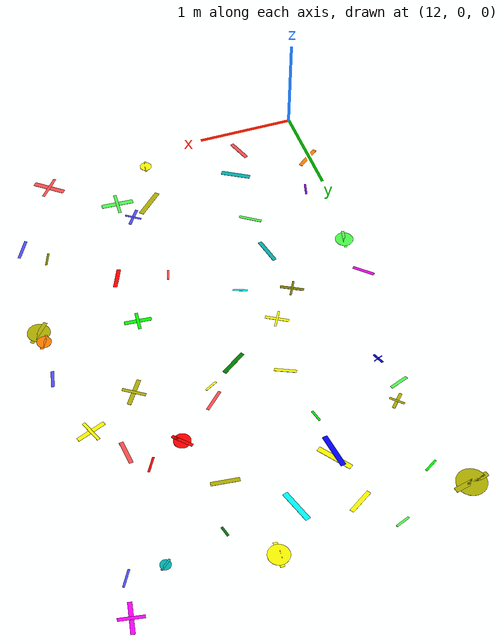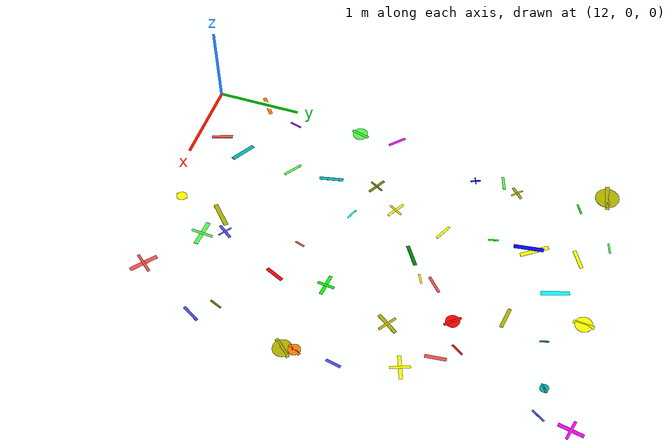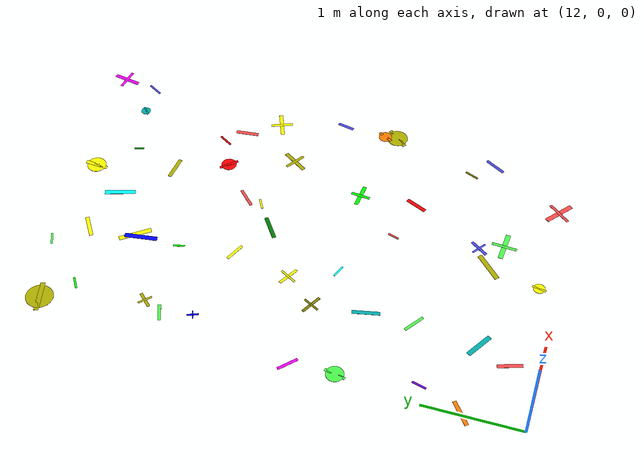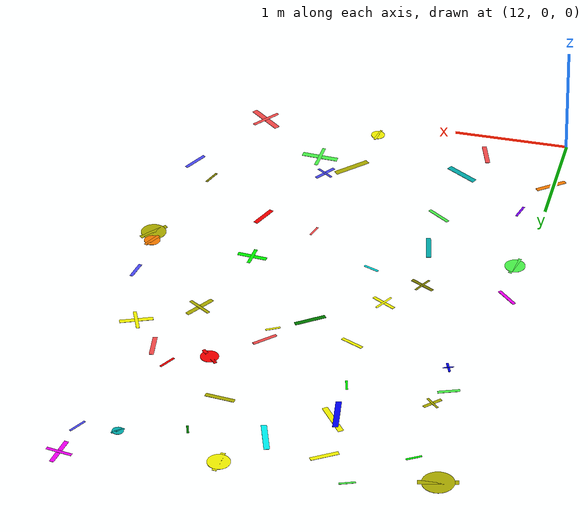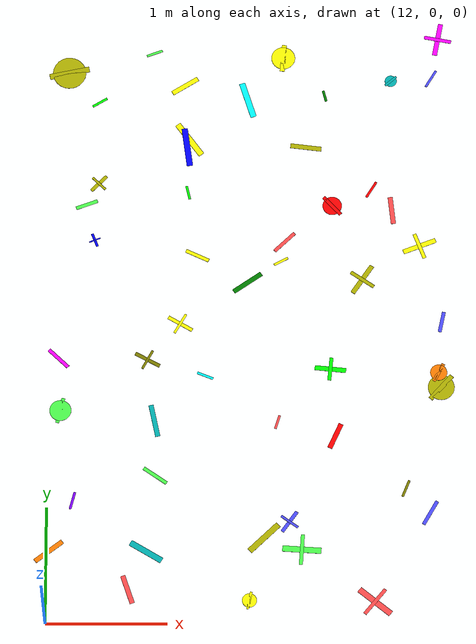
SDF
<sdf version="1.6">
 <world name="default">
  <model name="letter_S_2045">
   <static>true</static>
   <pose>12.02 0.62 0.007 0 0 3.793</pose>
   <link name="link">
    <visual name="visual">
     <geometry><box><size>0.28 0.04 0.002</size></box></geometry>
     <material>
      <ambient>1.0 0.5 0.0 1</ambient>
      <diffuse>1.0 0.5 0.0 1</diffuse>
      <specular>0.1 0.1 0.1 1</specular>
     </material>
    </visual>
   </link>
  </model>
  <model name="letter_U_2046">
   <static>true</static>
   <pose>12.21 1.06 0.009 0 0 4.455</pose>
   <link name="link">
    <visual name="visual">
     <geometry><box><size>0.15 0.02 0.002</size></box></geometry>
     <material>
      <ambient>0.5 0.0 1.0 1</ambient>
      <diffuse>0.5 0.0 1.0 1</diffuse>
      <specular>0.1 0.1 0.1 1</specular>
     </material>
    </visual>
   </link>
  </model>
  <model name="letter_G_2047">
   <static>true</static>
   <pose>12.10 1.85 0.008 0 0 4.489</pose>
   <link name="link">
    <visual name="visual">
     <geometry><box><size>0.22 0.03 0.002</size></box></geometry>
     <material>
      <ambient>0.3 1.0 0.3 1</ambient>
      <diffuse>0.3 1.0 0.3 1</diffuse>
      <specular>0.1 0.1 0.1 1</specular>
     </material>
    </visual>
    <visual name="visual2">
     <geometry><cylinder><radius>0.09</radius><length>0.002</length></cylinder></geometry>
     <material><ambient>0.3 1.0 0.3 1</ambient><diffuse>0.3 1.0 0.3 1</diffuse></material>
    </visual>
   </link>
  </model>
  <model name="letter_V_2048">
   <static>true</static>
   <pose>12.08 2.31 0.008 0 0 5.524</pose>
   <link name="link">
    <visual name="visual">
     <geometry><box><size>0.22 0.03 0.002</size></box></geometry>
     <material>
      <ambient>1.0 0.0 1.0 1</ambient>
      <diffuse>1.0 0.0 1.0 1</diffuse>
      <specular>0.1 0.1 0.1 1</specular>
     </material>
    </visual>
   </link>
  </model>
  <model name="letter_H_2051">
   <static>true</static>
   <pose>12.37 3.37 0.003 0 0 1.952</pose>
   <link name="link">
    <visual name="visual">
     <geometry><box><size>0.12 0.02 0.002</size></box></geometry>
     <material>
      <ambient>0.0 0.0 1.0 1</ambient>
      <diffuse>0.0 0.0 1.0 1</diffuse>
      <specular>0.1 0.1 0.1 1</specular>
     </material>
    </visual>
    <visual name="visual2">
     <pose>0 0 0.001 0 0 1.57</pose>
     <geometry><box><size>0.10 0.01 0.001</size></box></geometry>
     <material><ambient>0.0 0.0 1.0 1</ambient><diffuse>0.0 0.0 1.0 1</diffuse></material>
    </visual>
   </link>
  </model>
  <model name="letter_D_2052">
   <static>true</static>
   <pose>12.30 3.69 0.005 0 0 3.494</pose>
   <link name="link">
    <visual name="visual">
     <geometry><box><size>0.19 0.03 0.002</size></box></geometry>
     <material>
      <ambient>0.3 1.0 0.3 1</ambient>
      <diffuse>0.3 1.0 0.3 1</diffuse>
      <specular>0.1 0.1 0.1 1</specular>
     </material>
    </visual>
   </link>
  </model>
  <model name="letter_I_2053">
   <static>true</static>
   <pose>12.40 3.88 0.007 0 0 0.793</pose>
   <link name="link">
    <visual name="visual">
     <geometry><box><size>0.18 0.03 0.002</size></box></geometry>
     <material>
      <ambient>0.7 0.7 0.0 1</ambient>
      <diffuse>0.7 0.7 0.0 1</diffuse>
      <specular>0.1 0.1 0.1 1</specular>
     </material>
    </visual>
    <visual name="visual2">
     <pose>0 0 0.001 0 0 1.57</pose>
     <geometry><box><size>0.15 0.02 0.001</size></box></geometry>
     <material><ambient>0.7 0.7 0.0 1</ambient><diffuse>0.7 0.7 0.0 1</diffuse></material>
    </visual>
   </link>
  </model>
  <model name="letter_Q_2055">
   <static>true</static>
   <pose>12.14 4.89 0.004 0 0 3.350</pose>
   <link name="link">
    <visual name="visual">
     <geometry><box><size>0.34 0.05 0.002</size></box></geometry>
     <material>
      <ambient>0.7 0.7 0.0 1</ambient>
      <diffuse>0.7 0.7 0.0 1</diffuse>
      <specular>0.1 0.1 0.1 1</specular>
     </material>
    </visual>
    <visual name="visual2">
     <geometry><cylinder><radius>0.14</radius><length>0.002</length></cylinder></geometry>
     <material><ambient>0.7 0.7 0.0 1</ambient><diffuse>0.7 0.7 0.0 1</diffuse></material>
    </visual>
   </link>
  </model>
  <model name="letter_Z_2056">
   <static>true</static>
   <pose>12.40 4.62 0.004 0 0 0.543</pose>
   <link name="link">
    <visual name="visual">
     <geometry><box><size>0.14 0.02 0.002</size></box></geometry>
     <material>
      <ambient>0.0 1.0 0.0 1</ambient>
      <diffuse>0.0 1.0 0.0 1</diffuse>
      <specular>0.1 0.1 0.1 1</specular>
     </material>
    </visual>
   </link>
  </model>
  <model name="letter_D_2122">
   <static>true</static>
   <pose>12.67 0.29 0.012 0 0 1.898</pose>
   <link name="link">
    <visual name="visual">
     <geometry><box><size>0.25 0.04 0.002</size></box></geometry>
     <material>
      <ambient>1.0 0.3 0.3 1</ambient>
      <diffuse>1.0 0.3 0.3 1</diffuse>
      <specular>0.1 0.1 0.1 1</specular>
     </material>
    </visual>
   </link>
  </model>
  <model name="letter_D_2125">
   <static>true</static>
   <pose>12.82 0.62 0.005 0 0 2.601</pose>
   <link name="link">
    <visual name="visual">
     <geometry><box><size>0.30 0.05 0.002</size></box></geometry>
     <material>
      <ambient>0.0 0.7 0.7 1</ambient>
      <diffuse>0.0 0.7 0.7 1</diffuse>
      <specular>0.1 0.1 0.1 1</specular>
     </material>
    </visual>
   </link>
  </model>
  <model name="letter_D_2126">
   <static>true</static>
   <pose>12.89 1.28 0.008 0 0 2.536</pose>
   <link name="link">
    <visual name="visual">
     <geometry><box><size>0.23 0.03 0.002</size></box></geometry>
     <material>
      <ambient>0.3 1.0 0.3 1</ambient>
      <diffuse>0.3 1.0 0.3 1</diffuse>
      <specular>0.1 0.1 0.1 1</specular>
     </material>
    </visual>
   </link>
  </model>
  <model name="letter_M_2127">
   <static>true</static>
   <pose>12.88 1.76 0.010 0 0 4.922</pose>
   <link name="link">
    <visual name="visual">
     <geometry><box><size>0.28 0.04 0.002</size></box></geometry>
     <material>
      <ambient>0.0 0.7 0.7 1</ambient>
      <diffuse>0.0 0.7 0.7 1</diffuse>
      <specular>0.1 0.1 0.1 1</specular>
     </material>
    </visual>
   </link>
  </model>
  <model name="letter_H_2128">
   <static>true</static>
   <pose>12.82 2.30 0.009 0 0 5.786</pose>
   <link name="link">
    <visual name="visual">
     <geometry><box><size>0.23 0.03 0.002</size></box></geometry>
     <material>
      <ambient>0.5 0.5 0.0 1</ambient>
      <diffuse>0.5 0.5 0.0 1</diffuse>
      <specular>0.1 0.1 0.1 1</specular>
     </material>
    </visual>
    <visual name="visual2">
     <pose>0 0 0.001 0 0 1.57</pose>
     <geometry><box><size>0.18 0.02 0.001</size></box></geometry>
     <material><ambient>0.5 0.5 0.0 1</ambient><diffuse>0.5 0.5 0.0 1</diffuse></material>
    </visual>
   </link>
  </model>
  <model name="letter_W_2129">
   <static>true</static>
   <pose>13.30 2.16 0.007 0 0 5.903</pose>
   <link name="link">
    <visual name="visual">
     <geometry><box><size>0.14 0.02 0.002</size></box></geometry>
     <material>
      <ambient>0.0 1.0 1.0 1</ambient>
      <diffuse>0.0 1.0 1.0 1</diffuse>
      <specular>0.1 0.1 0.1 1</specular>
     </material>
    </visual>
   </link>
  </model>
  <model name="letter_F_2130">
   <static>true</static>
   <pose>13.09 2.62 0.011 0 0 5.760</pose>
   <link name="link">
    <visual name="visual">
     <geometry><box><size>0.23 0.03 0.002</size></box></geometry>
     <material>
      <ambient>1.0 1.0 0.0 1</ambient>
      <diffuse>1.0 1.0 0.0 1</diffuse>
      <specular>0.1 0.1 0.1 1</specular>
     </material>
    </visual>
    <visual name="visual2">
     <pose>0 0 0.001 0 0 1.57</pose>
     <geometry><box><size>0.19 0.02 0.001</size></box></geometry>
     <material><ambient>1.0 1.0 0.0 1</ambient><diffuse>1.0 1.0 0.0 1</diffuse></material>
    </visual>
   </link>
  </model>
  <model name="letter_V_2131">
   <static>true</static>
   <pose>13.23 3.23 0.009 0 0 2.707</pose>
   <link name="link">
    <visual name="visual">
     <geometry><box><size>0.21 0.03 0.002</size></box></geometry>
     <material>
      <ambient>1.0 1.0 0.0 1</ambient>
      <diffuse>1.0 1.0 0.0 1</diffuse>
      <specular>0.1 0.1 0.1 1</specular>
     </material>
    </visual>
   </link>
  </model>
  <model name="letter_M_2132">
   <static>true</static>
   <pose>13.15 3.80 0.005 0 0 4.944</pose>
   <link name="link">
    <visual name="visual">
     <geometry><box><size>0.12 0.02 0.002</size></box></geometry>
     <material>
      <ambient>0.0 1.0 0.0 1</ambient>
      <diffuse>0.0 1.0 0.0 1</diffuse>
      <specular>0.1 0.1 0.1 1</specular>
     </material>
    </visual>
   </link>
  </model>
  <model name="letter_K_2133">
   <static>true</static>
   <pose>13.16 4.28 0.009 0 0 5.344</pose>
   <link name="link">
    <visual name="visual">
     <geometry><box><size>0.34 0.05 0.002</size></box></geometry>
     <material>
      <ambient>1.0 1.0 0.0 1</ambient>
      <diffuse>1.0 1.0 0.0 1</diffuse>
      <specular>0.1 0.1 0.1 1</specular>
     </material>
    </visual>
   </link>
  </model>
  <model name="letter_K_2134">
   <static>true</static>
   <pose>13.14 4.21 0.012 0 0 1.706</pose>
   <link name="link">
    <visual name="visual">
     <geometry><box><size>0.34 0.05 0.002</size></box></geometry>
     <material>
      <ambient>0.0 0.0 1.0 1</ambient>
      <diffuse>0.0 0.0 1.0 1</diffuse>
      <specular>0.1 0.1 0.1 1</specular>
     </material>
    </visual>
   </link>
  </model>
  <model name="letter_K_2135">
   <static>true</static>
   <pose>13.12 4.77 0.011 0 0 3.701</pose>
   <link name="link">
    <visual name="visual">
     <geometry><box><size>0.25 0.04 0.002</size></box></geometry>
     <material>
      <ambient>1.0 1.0 0.0 1</ambient>
      <diffuse>1.0 1.0 0.0 1</diffuse>
      <specular>0.1 0.1 0.1 1</specular>
     </material>
    </visual>
   </link>
  </model>
  <model name="letter_D_2136">
   <static>true</static>
   <pose>12.86 5.07 0.010 0 0 0.356</pose>
   <link name="link">
    <visual name="visual">
     <geometry><box><size>0.14 0.02 0.002</size></box></geometry>
     <material>
      <ambient>0.3 1.0 0.3 1</ambient>
      <diffuse>0.3 1.0 0.3 1</diffuse>
      <specular>0.1 0.1 0.1 1</specular>
     </material>
    </visual>
   </link>
  </model>
  <model name="letter_Q_2199">
   <static>true</static>
   <pose>13.67 0.20 0.007 0 0 4.511</pose>
   <link name="link">
    <visual name="visual">
     <geometry><box><size>0.15 0.02 0.002</size></box></geometry>
     <material>
      <ambient>1.0 1.0 0.0 1</ambient>
      <diffuse>1.0 1.0 0.0 1</diffuse>
      <specular>0.1 0.1 0.1 1</specular>
     </material>
    </visual>
    <visual name="visual2">
     <geometry><cylinder><radius>0.06</radius><length>0.002</length></cylinder></geometry>
     <material><ambient>1.0 1.0 0.0 1</ambient><diffuse>1.0 1.0 0.0 1</diffuse></material>
    </visual>
   </link>
  </model>
  <model name="letter_A_2201">
   <static>true</static>
   <pose>14.10 0.64 0.005 0 0 6.219</pose>
   <link name="link">
    <visual name="visual">
     <geometry><box><size>0.32 0.05 0.002</size></box></geometry>
     <material>
      <ambient>0.3 1.0 0.3 1</ambient>
      <diffuse>0.3 1.0 0.3 1</diffuse>
      <specular>0.1 0.1 0.1 1</specular>
     </material>
    </visual>
    <visual name="visual2">
     <pose>0 0 0.001 0 0 1.57</pose>
     <geometry><box><size>0.26 0.03 0.001</size></box></geometry>
     <material><ambient>0.3 1.0 0.3 1</ambient><diffuse>0.3 1.0 0.3 1</diffuse></material>
    </visual>
   </link>
  </model>
  <model name="letter_F_2202">
   <static>true</static>
   <pose>14.00 0.88 0.010 0 0 0.955</pose>
   <link name="link">
    <visual name="visual">
     <geometry><box><size>0.21 0.03 0.002</size></box></geometry>
     <material>
      <ambient>0.3 0.3 1.0 1</ambient>
      <diffuse>0.3 0.3 1.0 1</diffuse>
      <specular>0.1 0.1 0.1 1</specular>
     </material>
    </visual>
    <visual name="visual2">
     <pose>0 0 0.001 0 0 1.57</pose>
     <geometry><box><size>0.17 0.02 0.001</size></box></geometry>
     <material><ambient>0.3 0.3 1.0 1</ambient><diffuse>0.3 0.3 1.0 1</diffuse></material>
    </visual>
   </link>
  </model>
  <model name="letter_U_2203">
   <static>true</static>
   <pose>13.79 0.74 0.009 0 0 3.910</pose>
   <link name="link">
    <visual name="visual">
     <geometry><box><size>0.33 0.05 0.002</size></box></geometry>
     <material>
      <ambient>0.7 0.7 0.0 1</ambient>
      <diffuse>0.7 0.7 0.0 1</diffuse>
      <specular>0.1 0.1 0.1 1</specular>
     </material>
    </visual>
   </link>
  </model>
  <model name="letter_S_2204">
   <static>true</static>
   <pose>14.38 1.63 0.007 0 0 1.146</pose>
   <link name="link">
    <visual name="visual">
     <geometry><box><size>0.23 0.04 0.002</size></box></geometry>
     <material>
      <ambient>1.0 0.0 0.0 1</ambient>
      <diffuse>1.0 0.0 0.0 1</diffuse>
      <specular>0.1 0.1 0.1 1</specular>
     </material>
    </visual>
   </link>
  </model>
  <model name="letter_W_2205">
   <static>true</static>
   <pose>13.90 1.75 0.013 0 0 1.271</pose>
   <link name="link">
    <visual name="visual">
     <geometry><box><size>0.12 0.02 0.002</size></box></geometry>
     <material>
      <ambient>1.0 0.3 0.3 1</ambient>
      <diffuse>1.0 0.3 0.3 1</diffuse>
      <specular>0.1 0.1 0.1 1</specular>
     </material>
    </visual>
   </link>
  </model>
  <model name="letter_A_2206">
   <static>true</static>
   <pose>14.34 2.22 0.008 0 0 3.044</pose>
   <link name="link">
    <visual name="visual">
     <geometry><box><size>0.26 0.04 0.002</size></box></geometry>
     <material>
      <ambient>0.0 1.0 0.0 1</ambient>
      <diffuse>0.0 1.0 0.0 1</diffuse>
      <specular>0.1 0.1 0.1 1</specular>
     </material>
    </visual>
    <visual name="visual2">
     <pose>0 0 0.001 0 0 1.57</pose>
     <geometry><box><size>0.20 0.03 0.001</size></box></geometry>
     <material><ambient>0.0 1.0 0.0 1</ambient><diffuse>0.0 1.0 0.0 1</diffuse></material>
    </visual>
   </link>
  </model>
  <model name="letter_V_2207">
   <static>true</static>
   <pose>13.96 3.35 0.013 0 0 0.765</pose>
   <link name="link">
    <visual name="visual">
     <geometry><box><size>0.23 0.03 0.002</size></box></geometry>
     <material>
      <ambient>1.0 0.3 0.3 1</ambient>
      <diffuse>1.0 0.3 0.3 1</diffuse>
      <specular>0.1 0.1 0.1 1</specular>
     </material>
    </visual>
   </link>
  </model>
  <model name="letter_R_2208">
   <static>true</static>
   <pose>13.93 3.18 0.006 0 0 0.490</pose>
   <link name="link">
    <visual name="visual">
     <geometry><box><size>0.13 0.02 0.002</size></box></geometry>
     <material>
      <ambient>1.0 1.0 0.0 1</ambient>
      <diffuse>1.0 1.0 0.0 1</diffuse>
      <specular>0.1 0.1 0.1 1</specular>
     </material>
    </visual>
   </link>
  </model>
  <model name="letter_M_2209">
   <static>true</static>
   <pose>13.65 2.99 0.003 0 0 3.748</pose>
   <link name="link">
    <visual name="visual">
     <geometry><box><size>0.28 0.04 0.002</size></box></geometry>
     <material>
      <ambient>0.0 0.5 0.0 1</ambient>
      <diffuse>0.0 0.5 0.0 1</diffuse>
      <specular>0.1 0.1 0.1 1</specular>
     </material>
    </visual>
   </link>
  </model>
  <model name="letter_Q_2210">
   <static>true</static>
   <pose>14.36 3.68 0.010 0 0 2.325</pose>
   <link name="link">
    <visual name="visual">
     <geometry><box><size>0.21 0.03 0.002</size></box></geometry>
     <material>
      <ambient>1.0 0.0 0.0 1</ambient>
      <diffuse>1.0 0.0 0.0 1</diffuse>
      <specular>0.1 0.1 0.1 1</specular>
     </material>
    </visual>
    <visual name="visual2">
     <geometry><cylinder><radius>0.08</radius><length>0.002</length></cylinder></geometry>
     <material><ambient>1.0 0.0 0.0 1</ambient><diffuse>1.0 0.0 0.0 1</diffuse></material>
    </visual>
   </link>
  </model>
  <model name="letter_P_2211">
   <static>true</static>
   <pose>14.14 4.21 0.012 0 0 3.020</pose>
   <link name="link">
    <visual name="visual">
     <geometry><box><size>0.26 0.04 0.002</size></box></geometry>
     <material>
      <ambient>0.7 0.7 0.0 1</ambient>
      <diffuse>0.7 0.7 0.0 1</diffuse>
      <specular>0.1 0.1 0.1 1</specular>
     </material>
    </visual>
   </link>
  </model>
  <model name="letter_V_2212">
   <static>true</static>
   <pose>14.30 4.68 0.011 0 0 4.970</pose>
   <link name="link">
    <visual name="visual">
     <geometry><box><size>0.10 0.02 0.002</size></box></geometry>
     <material>
      <ambient>0.0 0.5 0.0 1</ambient>
      <diffuse>0.0 0.5 0.0 1</diffuse>
      <specular>0.1 0.1 0.1 1</specular>
     </material>
    </visual>
   </link>
  </model>
  <model name="letter_R_2213">
   <static>true</static>
   <pose>13.65 4.64 0.012 0 0 5.022</pose>
   <link name="link">
    <visual name="visual">
     <geometry><box><size>0.32 0.05 0.002</size></box></geometry>
     <material>
      <ambient>0.0 1.0 1.0 1</ambient>
      <diffuse>0.0 1.0 1.0 1</diffuse>
      <specular>0.1 0.1 0.1 1</specular>
     </material>
    </visual>
   </link>
  </model>
  <model name="letter_G_2214">
   <static>true</static>
   <pose>13.95 5.03 0.005 0 0 1.492</pose>
   <link name="link">
    <visual name="visual">
     <geometry><box><size>0.24 0.04 0.002</size></box></geometry>
     <material>
      <ambient>1.0 1.0 0.0 1</ambient>
      <diffuse>1.0 1.0 0.0 1</diffuse>
      <specular>0.1 0.1 0.1 1</specular>
     </material>
    </visual>
    <visual name="visual2">
     <geometry><cylinder><radius>0.10</radius><length>0.002</length></cylinder></geometry>
     <material><ambient>1.0 1.0 0.0 1</ambient><diffuse>1.0 1.0 0.0 1</diffuse></material>
    </visual>
   </link>
  </model>
  <model name="letter_F_2281">
   <static>true</static>
   <pose>14.70 0.19 0.010 0 0 2.461</pose>
   <link name="link">
    <visual name="visual">
     <geometry><box><size>0.33 0.05 0.002</size></box></geometry>
     <material>
      <ambient>1.0 0.3 0.3 1</ambient>
      <diffuse>1.0 0.3 0.3 1</diffuse>
      <specular>0.1 0.1 0.1 1</specular>
     </material>
    </visual>
    <visual name="visual2">
     <pose>0 0 0.001 0 0 1.57</pose>
     <geometry><box><size>0.27 0.03 0.001</size></box></geometry>
     <material><ambient>1.0 0.3 0.3 1</ambient><diffuse>1.0 0.3 0.3 1</diffuse></material>
    </visual>
   </link>
  </model>
  <model name="letter_Z_2283">
   <static>true</static>
   <pose>15.16 0.96 0.007 0 0 4.195</pose>
   <link name="link">
    <visual name="visual">
     <geometry><box><size>0.23 0.03 0.002</size></box></geometry>
     <material>
      <ambient>0.3 0.3 1.0 1</ambient>
      <diffuse>0.3 0.3 1.0 1</diffuse>
      <specular>0.1 0.1 0.1 1</specular>
     </material>
    </visual>
   </link>
  </model>
  <model name="letter_P_2284">
   <static>true</static>
   <pose>14.96 1.17 0.011 0 0 4.329</pose>
   <link name="link">
    <visual name="visual">
     <geometry><box><size>0.15 0.02 0.002</size></box></geometry>
     <material>
      <ambient>0.5 0.5 0.0 1</ambient>
      <diffuse>0.5 0.5 0.0 1</diffuse>
      <specular>0.1 0.1 0.1 1</specular>
     </material>
    </visual>
   </link>
  </model>
  <model name="letter_O_2285">
   <static>true</static>
   <pose>15.26 2.06 0.006 0 0 3.989</pose>
   <link name="link">
    <visual name="visual">
     <geometry><box><size>0.27 0.04 0.002</size></box></geometry>
     <material>
      <ambient>0.7 0.7 0.0 1</ambient>
      <diffuse>0.7 0.7 0.0 1</diffuse>
      <specular>0.1 0.1 0.1 1</specular>
     </material>
    </visual>
    <visual name="visual2">
     <geometry><cylinder><radius>0.11</radius><length>0.002</length></cylinder></geometry>
     <material><ambient>0.7 0.7 0.0 1</ambient><diffuse>0.7 0.7 0.0 1</diffuse></material>
    </visual>
   </link>
  </model>
  <model name="letter_O_2286">
   <static>true</static>
   <pose>15.24 2.19 0.011 0 0 1.075</pose>
   <link name="link">
    <visual name="visual">
     <geometry><box><size>0.17 0.03 0.002</size></box></geometry>
     <material>
      <ambient>1.0 0.5 0.0 1</ambient>
      <diffuse>1.0 0.5 0.0 1</diffuse>
      <specular>0.1 0.1 0.1 1</specular>
     </material>
    </visual>
    <visual name="visual2">
     <geometry><cylinder><radius>0.07</radius><length>0.002</length></cylinder></geometry>
     <material><ambient>1.0 0.5 0.0 1</ambient><diffuse>1.0 0.5 0.0 1</diffuse></material>
    </visual>
   </link>
  </model>
  <model name="letter_J_2287">
   <static>true</static>
   <pose>15.27 2.64 0.008 0 0 4.507</pose>
   <link name="link">
    <visual name="visual">
     <geometry><box><size>0.18 0.03 0.002</size></box></geometry>
     <material>
      <ambient>0.3 0.3 1.0 1</ambient>
      <diffuse>0.3 0.3 1.0 1</diffuse>
      <specular>0.1 0.1 0.1 1</specular>
     </material>
    </visual>
   </link>
  </model>
  <model name="letter_E_2288">
   <static>true</static>
   <pose>15.09 3.32 0.005 0 0 3.512</pose>
   <link name="link">
    <visual name="visual">
     <geometry><box><size>0.29 0.04 0.002</size></box></geometry>
     <material>
      <ambient>1.0 1.0 0.0 1</ambient>
      <diffuse>1.0 1.0 0.0 1</diffuse>
      <specular>0.1 0.1 0.1 1</specular>
     </material>
    </visual>
    <visual name="visual2">
     <pose>0 0 0.001 0 0 1.57</pose>
     <geometry><box><size>0.23 0.03 0.001</size></box></geometry>
     <material><ambient>1.0 1.0 0.0 1</ambient><diffuse>1.0 1.0 0.0 1</diffuse></material>
    </visual>
   </link>
  </model>
  <model name="letter_T_2289">
   <static>true</static>
   <pose>14.61 3.02 0.004 0 0 4.118</pose>
   <link name="link">
    <visual name="visual">
     <geometry><box><size>0.29 0.04 0.002</size></box></geometry>
     <material>
      <ambient>0.7 0.7 0.0 1</ambient>
      <diffuse>0.7 0.7 0.0 1</diffuse>
      <specular>0.1 0.1 0.1 1</specular>
     </material>
    </visual>
    <visual name="visual2">
     <pose>0 0 0.001 0 0 1.57</pose>
     <geometry><box><size>0.23 0.03 0.001</size></box></geometry>
     <material><ambient>0.7 0.7 0.0 1</ambient><diffuse>0.7 0.7 0.0 1</diffuse></material>
    </visual>
   </link>
  </model>
  <model name="letter_Y_2290">
   <static>true</static>
   <pose>14.69 3.83 0.004 0 0 4.164</pose>
   <link name="link">
    <visual name="visual">
     <geometry><box><size>0.16 0.02 0.002</size></box></geometry>
     <material>
      <ambient>1.0 0.0 0.0 1</ambient>
      <diffuse>1.0 0.0 0.0 1</diffuse>
      <specular>0.1 0.1 0.1 1</specular>
     </material>
    </visual>
   </link>
  </model>
  <model name="letter_R_2291">
   <static>true</static>
   <pose>14.86 3.64 0.007 0 0 4.821</pose>
   <link name="link">
    <visual name="visual">
     <geometry><box><size>0.24 0.04 0.002</size></box></geometry>
     <material>
      <ambient>1.0 0.3 0.3 1</ambient>
      <diffuse>1.0 0.3 0.3 1</diffuse>
      <specular>0.1 0.1 0.1 1</specular>
     </material>
    </visual>
   </link>
  </model>
  <model name="letter_D_2292">
   <static>true</static>
   <pose>15.20 4.84 0.011 0 0 4.170</pose>
   <link name="link">
    <visual name="visual">
     <geometry><box><size>0.17 0.02 0.002</size></box></geometry>
     <material>
      <ambient>0.3 0.3 1.0 1</ambient>
      <diffuse>0.3 0.3 1.0 1</diffuse>
      <specular>0.1 0.1 0.1 1</specular>
     </material>
    </visual>
   </link>
  </model>
  <model name="letter_C_2293">
   <static>true</static>
   <pose>14.86 4.82 0.006 0 0 3.839</pose>
   <link name="link">
    <visual name="visual">
     <geometry><box><size>0.12 0.02 0.002</size></box></geometry>
     <material>
      <ambient>0.0 0.7 0.7 1</ambient>
      <diffuse>0.0 0.7 0.7 1</diffuse>
      <specular>0.1 0.1 0.1 1</specular>
     </material>
    </visual>
    <visual name="visual2">
     <geometry><cylinder><radius>0.05</radius><length>0.002</length></cylinder></geometry>
     <material><ambient>0.0 0.7 0.7 1</ambient><diffuse>0.0 0.7 0.7 1</diffuse></material>
    </visual>
   </link>
  </model>
  <model name="letter_H_2294">
   <static>true</static>
   <pose>15.26 5.20 0.011 0 0 4.526</pose>
   <link name="link">
    <visual name="visual">
     <geometry><box><size>0.29 0.04 0.002</size></box></geometry>
     <material>
      <ambient>1.0 0.0 1.0 1</ambient>
      <diffuse>1.0 0.0 1.0 1</diffuse>
      <specular>0.1 0.1 0.1 1</specular>
     </material>
    </visual>
    <visual name="visual2">
     <pose>0 0 0.001 0 0 1.57</pose>
     <geometry><box><size>0.23 0.03 0.001</size></box></geometry>
     <material><ambient>1.0 0.0 1.0 1</ambient><diffuse>1.0 0.0 1.0 1</diffuse></material>
    </visual>
   </link>
  </model>
 </world>
</sdf>
